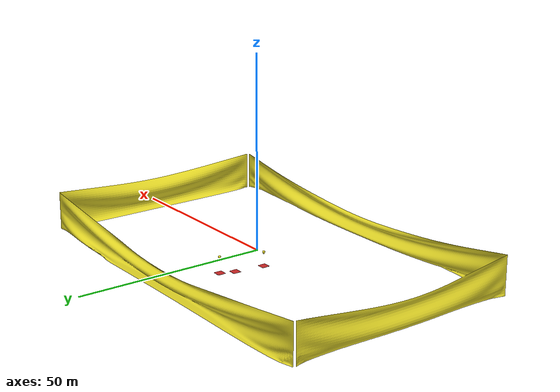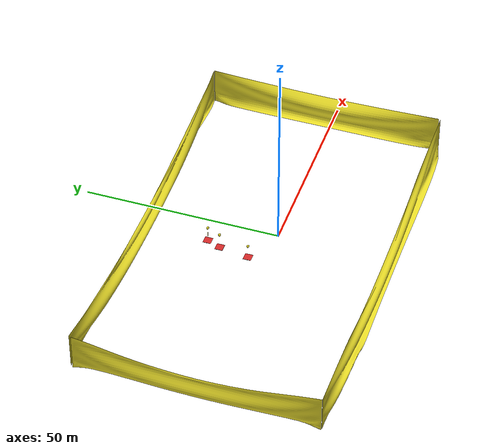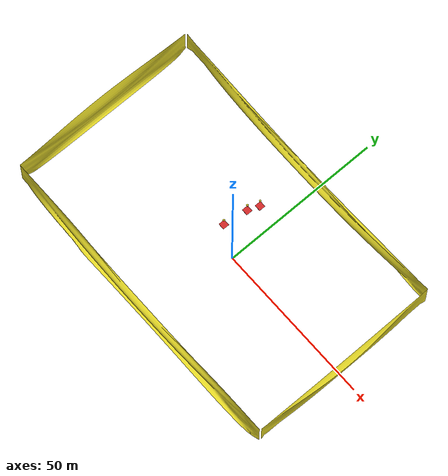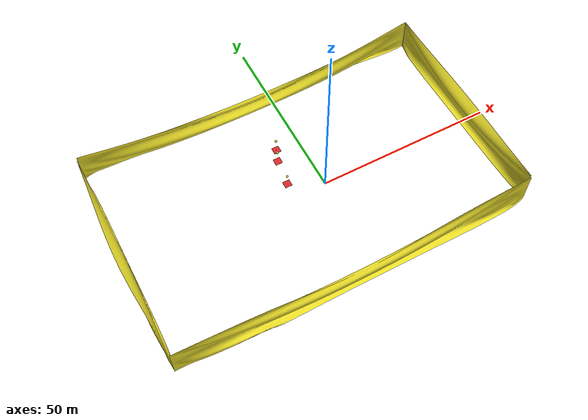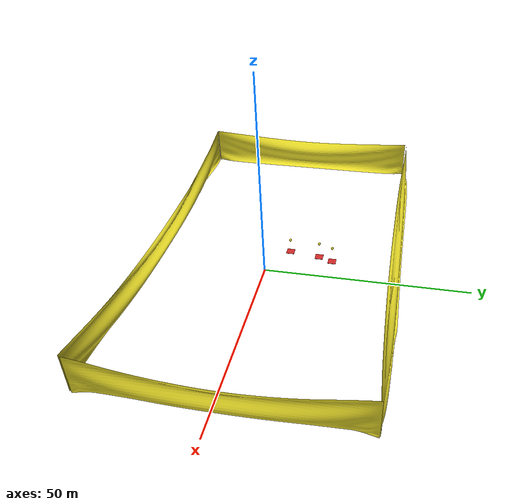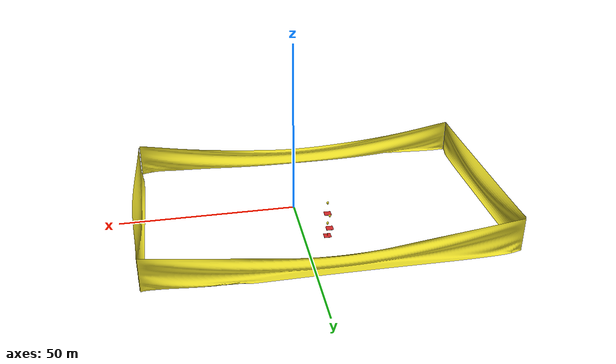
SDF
<sdf version="1.6">
 <world name="default">
  <model name="Balloon4.5m_clone_2">
   <link name="link_0">
    <pose>0 0 -0.025 0 -0 0</pose>
    <inertial>
     <mass>100</mass>
     <inertia>
      <ixx>0.166667</ixx>
      <ixy>0</ixy>
      <ixz>0</ixz>
      <iyy>0.166667</iyy>
      <iyz>0</iyz>
      <izz>0.166667</izz>
     </inertia>
    </inertial>
    <visual name="visual">
     <geometry><mesh><uri>/home/varun/MBZIRC_Arena/Balloon/Base.dae</uri><scale>1 1 1</scale></mesh></geometry>
     <material>
      <lighting>1</lighting>
      <script><uri>file://media/materials/scripts/gazebo.material</uri><name>Gazebo/Red</name></script>
      <shader type="vertex"><normal_map>__default__</normal_map></shader>
      <ambient>0.3 0.3 0.3 1</ambient>
      <diffuse>1 1 1 1</diffuse>
      <specular>0.1 0.1 0.1 1</specular>
      <emissive>0 0 0 1</emissive>
     </material>
    </visual>
    <collision name="collision">
     <geometry><mesh><uri>/home/varun/MBZIRC_Arena/Balloon/Base.dae</uri><scale>1 1 1</scale></mesh></geometry>
     <surface>
      <friction>
       <ode><mu>1</mu><mu2>1</mu2><fdir1>0 0 0</fdir1><slip1>0</slip1><slip2>0</slip2></ode>
       <torsional>
        <coefficient>1</coefficient>
        <patch_radius>0</patch_radius>
        <surface_radius>0</surface_radius>
        <use_patch_radius>1</use_patch_radius>
        <ode><slip>0</slip></ode>
       </torsional>
      </friction>
      <bounce><restitution_coefficient>0</restitution_coefficient><threshold>1e+06</threshold></bounce>
      <contact>
       <collide_without_contact>0</collide_without_contact>
       <collide_without_contact_bitmask>1</collide_without_contact_bitmask>
       <collide_bitmask>1</collide_bitmask>
       <ode>
        <soft_cfm>0</soft_cfm>
        <soft_erp>0.2</soft_erp>
        <kp>1e+13</kp>
        <kd>1</kd>
        <max_vel>0.01</max_vel>
        <min_depth>0</min_depth>
       </ode>
       <bullet>
        <split_impulse>1</split_impulse>
        <split_impulse_penetration_threshold>-0.01</split_impulse_penetration_threshold>
        <soft_cfm>0</soft_cfm>
        <soft_erp>0.2</soft_erp>
        <kp>1e+13</kp>
        <kd>1</kd>
       </bullet>
      </contact>
     </surface>
    </collision>
   </link>
   <link name="link_1">
    <pose>-0 -0 0.025 0 -0 0</pose>
    <inertial>
     <mass>0.2</mass>
     <inertia>
      <ixx>0.166667</ixx>
      <ixy>0</ixy>
      <ixz>0</ixz>
      <iyy>0.166667</iyy>
      <iyz>0</iyz>
      <izz>0.166667</izz>
     </inertia>
     <pose>0 0 4.5 0 -0 0</pose>
    </inertial>
    <visual name="visual">
     <geometry>
      <mesh><uri>/home/varun/MBZIRC_Arena/Balloon/Balloon4.5m.dae</uri><scale>1 1 1</scale></mesh>
     </geometry>
     <material>
      <lighting>1</lighting>
      <script><uri>file://media/materials/scripts/gazebo.material</uri><name>Gazebo/Yellow</name></script>
      <shader type="pixel"><normal_map>__default__</normal_map></shader>
      <ambient>0.3 0.3 0.3 1</ambient>
      <diffuse>0.7 0.7 0.7 1</diffuse>
      <specular>0.01 0.01 0.01 1</specular>
      <emissive>0 0 0 1</emissive>
     </material>
    </visual>
    <collision name="collision">
     <geometry>
      <mesh><uri>/home/varun/MBZIRC_Arena/Balloon/Balloon4.5m.dae</uri><scale>1 1 1</scale></mesh>
     </geometry>
     <surface>
      <friction>
       <ode><mu>1</mu><mu2>1</mu2><fdir1>0 0 0</fdir1><slip1>0</slip1><slip2>0</slip2></ode>
       <torsional>
        <coefficient>1</coefficient>
        <patch_radius>0</patch_radius>
        <surface_radius>0</surface_radius>
        <use_patch_radius>1</use_patch_radius>
        <ode><slip>0</slip></ode>
       </torsional>
      </friction>
      <bounce><restitution_coefficient>0</restitution_coefficient><threshold>1e+06</threshold></bounce>
      <contact>
       <collide_without_contact>0</collide_without_contact>
       <collide_without_contact_bitmask>1</collide_without_contact_bitmask>
       <collide_bitmask>1</collide_bitmask>
       <ode>
        <soft_cfm>0</soft_cfm>
        <soft_erp>0.2</soft_erp>
        <kp>1e+13</kp>
        <kd>1</kd>
        <max_vel>0.01</max_vel>
        <min_depth>0</min_depth>
       </ode>
       <bullet>
        <split_impulse>1</split_impulse>
        <split_impulse_penetration_threshold>-0.01</split_impulse_penetration_threshold>
        <soft_cfm>0</soft_cfm>
        <soft_erp>0.2</soft_erp>
        <kp>1e+13</kp>
        <kd>1</kd>
       </bullet>
      </contact>
     </surface>
    </collision>
   </link>
   <joint name="ball_joint" type="ball">
    <parent>link_0</parent>
    <child>link_1</child>
    <physics>
     <ode><limit><cfm>0</cfm><erp>0.2</erp></limit><suspension><cfm>0</cfm><erp>0.2</erp></suspension></ode>
    </physics>
   </joint>
   <static>0</static>
   <plugin name="wind_push" filename="libwind_push.so"/>
   <pose>-7.95853 12.357 -0.132713 0 -0.000459 0.00035</pose>
  </model>
  <model name="Balloon4.5m_clone_10">
   <link name="link_0">
    <pose>0 0 -0.025 0 -0 0</pose>
    <inertial>
     <mass>100</mass>
     <inertia>
      <ixx>0.166667</ixx>
      <ixy>0</ixy>
      <ixz>0</ixz>
      <iyy>0.166667</iyy>
      <iyz>0</iyz>
      <izz>0.166667</izz>
     </inertia>
    </inertial>
    <visual name="visual">
     <geometry><mesh><uri>/home/varun/MBZIRC_Arena/Balloon/Base.dae</uri><scale>1 1 1</scale></mesh></geometry>
     <material>
      <lighting>1</lighting>
      <script><uri>file://media/materials/scripts/gazebo.material</uri><name>Gazebo/Red</name></script>
      <shader type="vertex"><normal_map>__default__</normal_map></shader>
      <ambient>0.3 0.3 0.3 1</ambient>
      <diffuse>1 1 1 1</diffuse>
      <specular>0.1 0.1 0.1 1</specular>
      <emissive>0 0 0 1</emissive>
     </material>
    </visual>
    <collision name="collision">
     <geometry><mesh><uri>/home/varun/MBZIRC_Arena/Balloon/Base.dae</uri><scale>1 1 1</scale></mesh></geometry>
     <surface>
      <friction>
       <ode><mu>1</mu><mu2>1</mu2><fdir1>0 0 0</fdir1><slip1>0</slip1><slip2>0</slip2></ode>
       <torsional>
        <coefficient>1</coefficient>
        <patch_radius>0</patch_radius>
        <surface_radius>0</surface_radius>
        <use_patch_radius>1</use_patch_radius>
        <ode><slip>0</slip></ode>
       </torsional>
      </friction>
      <bounce><restitution_coefficient>0</restitution_coefficient><threshold>1e+06</threshold></bounce>
      <contact>
       <collide_without_contact>0</collide_without_contact>
       <collide_without_contact_bitmask>1</collide_without_contact_bitmask>
       <collide_bitmask>1</collide_bitmask>
       <ode>
        <soft_cfm>0</soft_cfm>
        <soft_erp>0.2</soft_erp>
        <kp>1e+13</kp>
        <kd>1</kd>
        <max_vel>0.01</max_vel>
        <min_depth>0</min_depth>
       </ode>
       <bullet>
        <split_impulse>1</split_impulse>
        <split_impulse_penetration_threshold>-0.01</split_impulse_penetration_threshold>
        <soft_cfm>0</soft_cfm>
        <soft_erp>0.2</soft_erp>
        <kp>1e+13</kp>
        <kd>1</kd>
       </bullet>
      </contact>
     </surface>
    </collision>
   </link>
   <link name="link_1">
    <pose>-0 -0 0.025 0 -0 0</pose>
    <inertial>
     <mass>0.2</mass>
     <inertia>
      <ixx>0.166667</ixx>
      <ixy>0</ixy>
      <ixz>0</ixz>
      <iyy>0.166667</iyy>
      <iyz>0</iyz>
      <izz>0.166667</izz>
     </inertia>
     <pose>0 0 4.5 0 -0 0</pose>
    </inertial>
    <visual name="visual">
     <geometry>
      <mesh><uri>/home/varun/MBZIRC_Arena/Balloon/Balloon4.5m.dae</uri><scale>1 1 1</scale></mesh>
     </geometry>
     <material>
      <lighting>1</lighting>
      <script><uri>file://media/materials/scripts/gazebo.material</uri><name>Gazebo/Yellow</name></script>
      <shader type="pixel"><normal_map>__default__</normal_map></shader>
      <ambient>0.3 0.3 0.3 1</ambient>
      <diffuse>0.7 0.7 0.7 1</diffuse>
      <specular>0.01 0.01 0.01 1</specular>
      <emissive>0 0 0 1</emissive>
     </material>
    </visual>
    <collision name="collision">
     <geometry>
      <mesh><uri>/home/varun/MBZIRC_Arena/Balloon/Balloon4.5m.dae</uri><scale>1 1 1</scale></mesh>
     </geometry>
     <surface>
      <friction>
       <ode><mu>1</mu><mu2>1</mu2><fdir1>0 0 0</fdir1><slip1>0</slip1><slip2>0</slip2></ode>
       <torsional>
        <coefficient>1</coefficient>
        <patch_radius>0</patch_radius>
        <surface_radius>0</surface_radius>
        <use_patch_radius>1</use_patch_radius>
        <ode><slip>0</slip></ode>
       </torsional>
      </friction>
      <bounce><restitution_coefficient>0</restitution_coefficient><threshold>1e+06</threshold></bounce>
      <contact>
       <collide_without_contact>0</collide_without_contact>
       <collide_without_contact_bitmask>1</collide_without_contact_bitmask>
       <collide_bitmask>1</collide_bitmask>
       <ode>
        <soft_cfm>0</soft_cfm>
        <soft_erp>0.2</soft_erp>
        <kp>1e+13</kp>
        <kd>1</kd>
        <max_vel>0.01</max_vel>
        <min_depth>0</min_depth>
       </ode>
       <bullet>
        <split_impulse>1</split_impulse>
        <split_impulse_penetration_threshold>-0.01</split_impulse_penetration_threshold>
        <soft_cfm>0</soft_cfm>
        <soft_erp>0.2</soft_erp>
        <kp>1e+13</kp>
        <kd>1</kd>
       </bullet>
      </contact>
     </surface>
    </collision>
   </link>
   <joint name="ball_joint" type="ball">
    <parent>link_0</parent>
    <child>link_1</child>
    <physics>
     <ode><limit><cfm>0</cfm><erp>0.2</erp></limit><suspension><cfm>0</cfm><erp>0.2</erp></suspension></ode>
    </physics>
   </joint>
   <static>0</static>
   <plugin name="wind_push" filename="libwind_push.so"/>
   <pose>-6.585 15.8606 -0.132381 0 0.000236 0.00047</pose>
  </model>
  <model name="Balloon5m_clone_2">
   <link name="link_0">
    <pose>0 0 -0.025 0 -0 0</pose>
    <inertial>
     <mass>100</mass>
     <inertia>
      <ixx>0.166667</ixx>
      <ixy>0</ixy>
      <ixz>0</ixz>
      <iyy>0.166667</iyy>
      <iyz>0</iyz>
      <izz>0.166667</izz>
     </inertia>
    </inertial>
    <visual name="visual">
     <geometry><mesh><uri>/home/varun/MBZIRC_Arena/Balloon/Base.dae</uri><scale>1 1 1</scale></mesh></geometry>
     <material>
      <lighting>1</lighting>
      <script><uri>file://media/materials/scripts/gazebo.material</uri><name>Gazebo/Red</name></script>
      <shader type="vertex"><normal_map>__default__</normal_map></shader>
      <ambient>0.3 0.3 0.3 1</ambient>
      <diffuse>1 1 1 1</diffuse>
      <specular>0.1 0.1 0.1 1</specular>
      <emissive>0 0 0 1</emissive>
     </material>
    </visual>
    <collision name="collision">
     <geometry><mesh><uri>/home/varun/MBZIRC_Arena/Balloon/Base.dae</uri><scale>1 1 1</scale></mesh></geometry>
     <surface>
      <friction>
       <ode><mu>1</mu><mu2>1</mu2><fdir1>0 0 0</fdir1><slip1>0</slip1><slip2>0</slip2></ode>
       <torsional>
        <coefficient>1</coefficient>
        <patch_radius>0</patch_radius>
        <surface_radius>0</surface_radius>
        <use_patch_radius>1</use_patch_radius>
        <ode><slip>0</slip></ode>
       </torsional>
      </friction>
      <bounce><restitution_coefficient>0</restitution_coefficient><threshold>1e+06</threshold></bounce>
      <contact>
       <collide_without_contact>0</collide_without_contact>
       <collide_without_contact_bitmask>1</collide_without_contact_bitmask>
       <collide_bitmask>1</collide_bitmask>
       <ode>
        <soft_cfm>0</soft_cfm>
        <soft_erp>0.2</soft_erp>
        <kp>1e+13</kp>
        <kd>1</kd>
        <max_vel>0.01</max_vel>
        <min_depth>0</min_depth>
       </ode>
       <bullet>
        <split_impulse>1</split_impulse>
        <split_impulse_penetration_threshold>-0.01</split_impulse_penetration_threshold>
        <soft_cfm>0</soft_cfm>
        <soft_erp>0.2</soft_erp>
        <kp>1e+13</kp>
        <kd>1</kd>
       </bullet>
      </contact>
     </surface>
    </collision>
   </link>
   <link name="link_1">
    <pose>-0 -0 0.025 0 -0 0</pose>
    <inertial>
     <mass>0.2</mass>
     <inertia>
      <ixx>0.166667</ixx>
      <ixy>0</ixy>
      <ixz>0</ixz>
      <iyy>0.166667</iyy>
      <iyz>0</iyz>
      <izz>0.166667</izz>
     </inertia>
     <pose>0 0 5 0 -0 0</pose>
    </inertial>
    <visual name="visual">
     <geometry>
      <mesh><uri>/home/varun/MBZIRC_Arena/Balloon/Balloon5m.dae</uri><scale>1 1 1</scale></mesh>
     </geometry>
     <material>
      <lighting>1</lighting>
      <script><uri>file://media/materials/scripts/gazebo.material</uri><name>Gazebo/Yellow</name></script>
      <shader type="pixel"><normal_map>__default__</normal_map></shader>
      <ambient>0.3 0.3 0.3 1</ambient>
      <diffuse>0.7 0.7 0.7 1</diffuse>
      <specular>0.01 0.01 0.01 1</specular>
      <emissive>0 0 0 1</emissive>
     </material>
    </visual>
    <collision name="collision">
     <geometry>
      <mesh><uri>/home/varun/MBZIRC_Arena/Balloon/Balloon5m.dae</uri><scale>1 1 1</scale></mesh>
     </geometry>
     <surface>
      <friction>
       <ode><mu>1</mu><mu2>1</mu2><fdir1>0 0 0</fdir1><slip1>0</slip1><slip2>0</slip2></ode>
       <torsional>
        <coefficient>1</coefficient>
        <patch_radius>0</patch_radius>
        <surface_radius>0</surface_radius>
        <use_patch_radius>1</use_patch_radius>
        <ode><slip>0</slip></ode>
       </torsional>
      </friction>
      <bounce><restitution_coefficient>0</restitution_coefficient><threshold>1e+06</threshold></bounce>
      <contact>
       <collide_without_contact>0</collide_without_contact>
       <collide_without_contact_bitmask>1</collide_without_contact_bitmask>
       <collide_bitmask>1</collide_bitmask>
       <ode>
        <soft_cfm>0</soft_cfm>
        <soft_erp>0.2</soft_erp>
        <kp>1e+13</kp>
        <kd>1</kd>
        <max_vel>0.01</max_vel>
        <min_depth>0</min_depth>
       </ode>
       <bullet>
        <split_impulse>1</split_impulse>
        <split_impulse_penetration_threshold>-0.01</split_impulse_penetration_threshold>
        <soft_cfm>0</soft_cfm>
        <soft_erp>0.2</soft_erp>
        <kp>1e+13</kp>
        <kd>1</kd>
       </bullet>
      </contact>
     </surface>
    </collision>
   </link>
   <joint name="ball_joint" type="ball">
    <parent>link_0</parent>
    <child>link_1</child>
    <physics>
     <ode><limit><cfm>0</cfm><erp>0.2</erp></limit><suspension><cfm>0</cfm><erp>0.2</erp></suspension></ode>
    </physics>
   </joint>
   <static>0</static>
   <plugin name="wind_push" filename="libwind_push.so"/>
   <pose>-9.04306 4.72952 -0.13271 0 0.000456 0.000143</pose>
  </model>
  <model name="100x60Net">
   <link name="link_7">
    <inertial>
     <mass>1</mass>
     <inertia>
      <ixx>0.166667</ixx>
      <ixy>0</ixy>
      <ixz>0</ixz>
      <iyy>0.166667</iyy>
      <iyz>0</iyz>
      <izz>0.166667</izz>
     </inertia>
    </inertial>
    <pose>-0.07033 -0.199955 0.028932 1.5708 -0 0</pose>
    <gravity>0</gravity>
    <kinematic>1</kinematic>
    <visual name="visual">
     <geometry>
      <mesh><uri>/home/varun/MBZIRC_Arena/Netted Arena/ArenaNet.obj</uri><scale>1 1 1</scale></mesh>
     </geometry>
     <material>
      <lighting>1</lighting>
      <script><uri>file://media/materials/scripts/gazebo.material</uri><name>Gazebo/Yellow</name></script>
      <shader type="pixel"><normal_map>/home/varun/MBZIRC_Arena/Netted Arena/ArenaNet.mtl</normal_map></shader>
      <ambient>0.3 0.3 0.3 1</ambient>
      <diffuse>0.7 0.7 0.7 1</diffuse>
      <specular>0.01 0.01 0.01 1</specular>
      <emissive>0 0 0 1</emissive>
     </material>
    </visual>
    <collision name="collision">
     <geometry>
      <mesh><uri>/home/varun/MBZIRC_Arena/Netted Arena/ArenaNet.obj</uri><scale>1 1 1</scale></mesh>
     </geometry>
     <surface>
      <friction>
       <ode><mu>1</mu><mu2>1</mu2><fdir1>0 0 0</fdir1><slip1>0</slip1><slip2>0</slip2></ode>
       <torsional>
        <coefficient>1</coefficient>
        <patch_radius>0</patch_radius>
        <surface_radius>0</surface_radius>
        <use_patch_radius>1</use_patch_radius>
        <ode><slip>0</slip></ode>
       </torsional>
      </friction>
      <bounce><restitution_coefficient>0</restitution_coefficient><threshold>1e+06</threshold></bounce>
      <contact>
       <collide_without_contact>0</collide_without_contact>
       <collide_without_contact_bitmask>1</collide_without_contact_bitmask>
       <collide_bitmask>1</collide_bitmask>
       <ode>
        <soft_cfm>0</soft_cfm>
        <soft_erp>0.2</soft_erp>
        <kp>1e+13</kp>
        <kd>1</kd>
        <max_vel>0.01</max_vel>
        <min_depth>0</min_depth>
       </ode>
       <bullet>
        <split_impulse>1</split_impulse>
        <split_impulse_penetration_threshold>-0.01</split_impulse_penetration_threshold>
        <soft_cfm>0</soft_cfm>
        <soft_erp>0.2</soft_erp>
        <kp>1e+13</kp>
        <kd>1</kd>
       </bullet>
      </contact>
     </surface>
    </collision>
   </link>
   <link name="link_7_clone">
    <inertial>
     <mass>1</mass>
     <inertia>
      <ixx>0.166667</ixx>
      <ixy>0</ixy>
      <ixz>0</ixz>
      <iyy>0.166667</iyy>
      <iyz>0</iyz>
      <izz>0.166667</izz>
     </inertia>
    </inertial>
    <pose>0.07033 0.199955 -0.028932 1.57079 -0 -3.14159</pose>
    <gravity>0</gravity>
    <kinematic>1</kinematic>
    <visual name="visual">
     <geometry>
      <mesh><uri>/home/varun/MBZIRC_Arena/Netted Arena/ArenaNet.obj</uri><scale>1 1 1</scale></mesh>
     </geometry>
     <material>
      <lighting>1</lighting>
      <script><uri>file://media/materials/scripts/gazebo.material</uri><name>Gazebo/Yellow</name></script>
      <shader type="pixel"><normal_map>/home/varun/MBZIRC_Arena/Netted Arena/ArenaNet.mtl</normal_map></shader>
      <ambient>0.3 0.3 0.3 1</ambient>
      <diffuse>0.7 0.7 0.7 1</diffuse>
      <specular>0.01 0.01 0.01 1</specular>
      <emissive>0 0 0 1</emissive>
     </material>
    </visual>
    <collision name="collision">
     <geometry>
      <mesh><uri>/home/varun/MBZIRC_Arena/Netted Arena/ArenaNet.obj</uri><scale>1 1 1</scale></mesh>
     </geometry>
     <surface>
      <friction>
       <ode><mu>1</mu><mu2>1</mu2><fdir1>0 0 0</fdir1><slip1>0</slip1><slip2>0</slip2></ode>
       <torsional>
        <coefficient>1</coefficient>
        <patch_radius>0</patch_radius>
        <surface_radius>0</surface_radius>
        <use_patch_radius>1</use_patch_radius>
        <ode><slip>0</slip></ode>
       </torsional>
      </friction>
      <bounce><restitution_coefficient>0</restitution_coefficient><threshold>1e+06</threshold></bounce>
      <contact>
       <collide_without_contact>0</collide_without_contact>
       <collide_without_contact_bitmask>1</collide_without_contact_bitmask>
       <collide_bitmask>1</collide_bitmask>
       <ode>
        <soft_cfm>0</soft_cfm>
        <soft_erp>0.2</soft_erp>
        <kp>1e+13</kp>
        <kd>1</kd>
        <max_vel>0.01</max_vel>
        <min_depth>0</min_depth>
       </ode>
       <bullet>
        <split_impulse>1</split_impulse>
        <split_impulse_penetration_threshold>-0.01</split_impulse_penetration_threshold>
        <soft_cfm>0</soft_cfm>
        <soft_erp>0.2</soft_erp>
        <kp>1e+13</kp>
        <kd>1</kd>
       </bullet>
      </contact>
     </surface>
    </collision>
   </link>
   <static>0</static>
   <pose>-6.16 1.63041 -0.459491 0 -0 0</pose>
  </model>
 </world>
</sdf>
